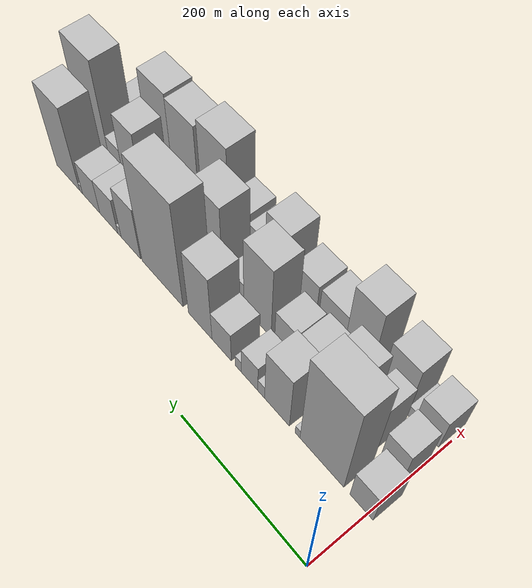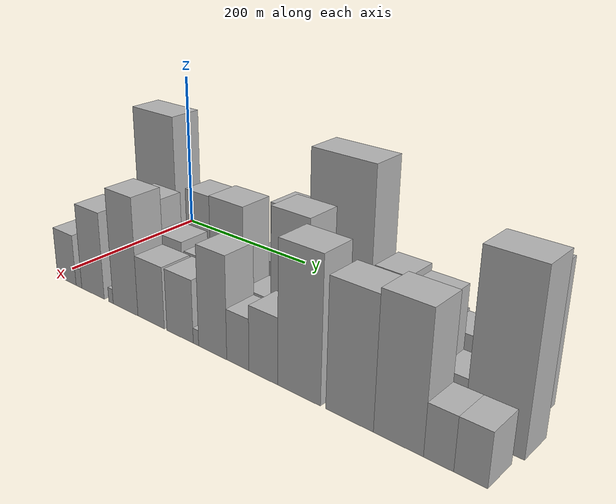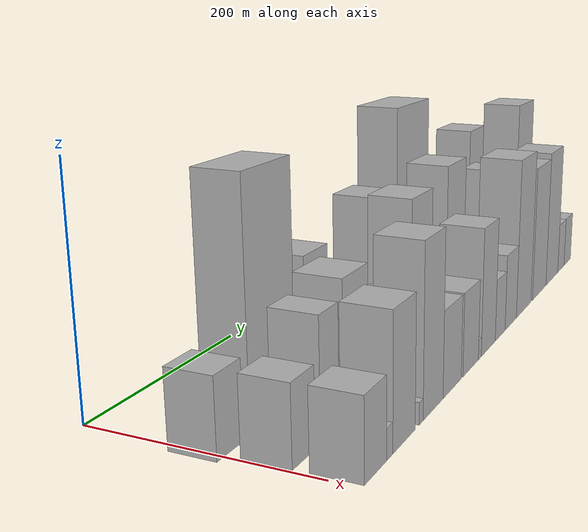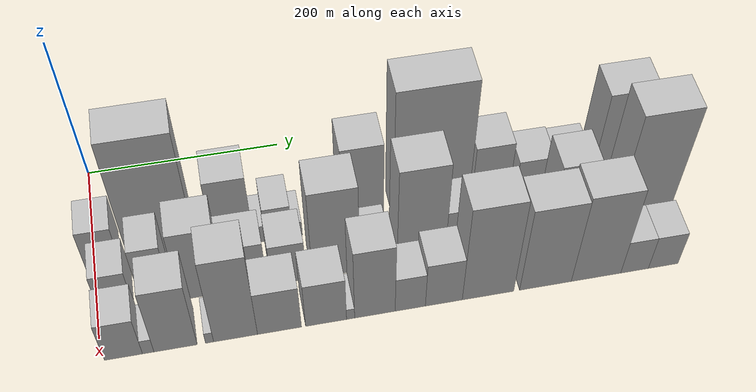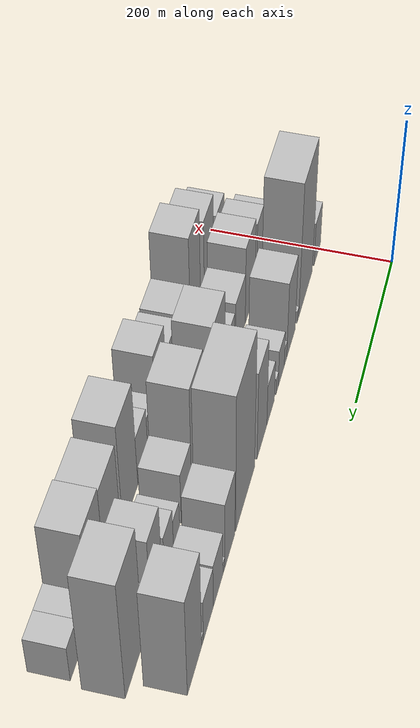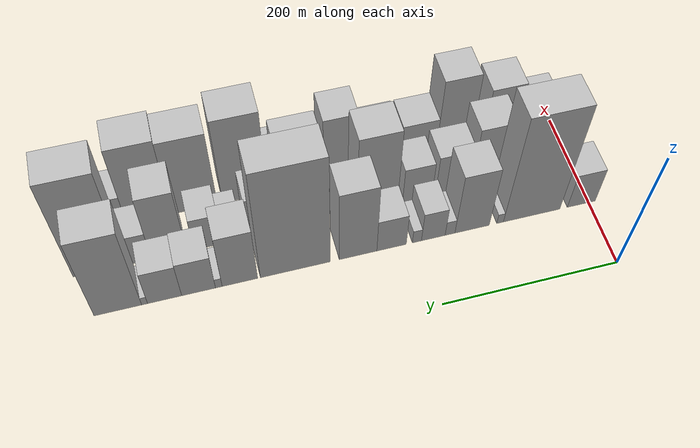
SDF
<sdf version="1.6">
 <world name="default">
  <model name="building_16">
   <static>1</static>
   <pose>100.0000 8.8448 0 0.000000 0.000000 0.000000</pose>
   <link name="link">
    <pose>0 0 31.50 0 0 0</pose>
    <collision name="collision"><geometry><box><size>40.0000 33.9415 63.0000</size></box></geometry></collision>
    <visual name="visual">
     <cast_shadows>0</cast_shadows>
     <geometry><box><size>40.0000 33.9415 63.0000</size></box></geometry>
     <material>
      <script>
       <uri>model://HANNAS_wall/materials/scripts</uri>
       <uri>model://HANNAS_wall/materials/textures</uri>
       <name>vrc/HANNAS_wall</name>
      </script>
     </material>
    </visual>
   </link>
  </model>
  <model name="building_17">
   <static>1</static>
   <pose>100.0000 68.5710 0 0.000000 0.000000 0.000000</pose>
   <link name="link">
    <pose>0 0 96.00 0 0 0</pose>
    <collision name="collision"><geometry><box><size>40.0000 67.5108 192.0000</size></box></geometry></collision>
    <visual name="visual">
     <cast_shadows>0</cast_shadows>
     <geometry><box><size>40.0000 67.5108 192.0000</size></box></geometry>
     <material>
      <script>
       <uri>model://HANNAS_wall/materials/scripts</uri>
       <uri>model://HANNAS_wall/materials/textures</uri>
       <name>vrc/HANNAS_wall</name>
      </script>
     </material>
    </visual>
   </link>
  </model>
  <model name="building_18">
   <static>1</static>
   <pose>100.0000 106.2454 0 0.000000 0.000000 0.000000</pose>
   <link name="link">
    <pose>0 0 9.00 0 0 0</pose>
    <collision name="collision"><geometry><box><size>40.0000 7.8379 18.0000</size></box></geometry></collision>
    <visual name="visual">
     <cast_shadows>0</cast_shadows>
     <geometry><box><size>40.0000 7.8379 18.0000</size></box></geometry>
     <material>
      <script>
       <uri>model://HANNAS_wall/materials/scripts</uri>
       <uri>model://HANNAS_wall/materials/textures</uri>
       <name>vrc/HANNAS_wall</name>
      </script>
     </material>
    </visual>
   </link>
  </model>
  <model name="building_19">
   <static>1</static>
   <pose>100.0000 139.3335 0 0.000000 0.000000 0.000000</pose>
   <link name="link">
    <pose>0 0 55.50 0 0 0</pose>
    <collision name="collision"><geometry><box><size>40.0000 40.3383 111.0000</size></box></geometry></collision>
    <visual name="visual">
     <cast_shadows>0</cast_shadows>
     <geometry><box><size>40.0000 40.3383 111.0000</size></box></geometry>
     <material>
      <script>
       <uri>model://HANNAS_wall/materials/scripts</uri>
       <uri>model://HANNAS_wall/materials/textures</uri>
       <name>vrc/HANNAS_wall</name>
      </script>
     </material>
    </visual>
   </link>
  </model>
  <model name="building_20">
   <static>1</static>
   <pose>100.0000 165.2207 0 0.000000 0.000000 0.000000</pose>
   <link name="link">
    <pose>0 0 13.50 0 0 0</pose>
    <collision name="collision"><geometry><box><size>40.0000 11.4361 27.0000</size></box></geometry></collision>
    <visual name="visual">
     <cast_shadows>0</cast_shadows>
     <geometry><box><size>40.0000 11.4361 27.0000</size></box></geometry>
     <material>
      <script>
       <uri>model://HANNAS_wall/materials/scripts</uri>
       <uri>model://HANNAS_wall/materials/textures</uri>
       <name>vrc/HANNAS_wall</name>
      </script>
     </material>
    </visual>
   </link>
  </model>
  <model name="building_21">
   <static>1</static>
   <pose>100.0000 184.7017 0 0.000000 0.000000 0.000000</pose>
   <link name="link">
    <pose>0 0 27.00 0 0 0</pose>
    <collision name="collision"><geometry><box><size>40.0000 27.5259 54.0000</size></box></geometry></collision>
    <visual name="visual">
     <cast_shadows>0</cast_shadows>
     <geometry><box><size>40.0000 27.5259 54.0000</size></box></geometry>
     <material>
      <script>
       <uri>model://HANNAS_wall/materials/scripts</uri>
       <uri>model://HANNAS_wall/materials/textures</uri>
       <name>vrc/HANNAS_wall</name>
      </script>
     </material>
    </visual>
   </link>
  </model>
  <model name="building_22">
   <static>1</static>
   <pose>100.0000 203.6912 0 0.000000 0.000000 0.000000</pose>
   <link name="link">
    <pose>0 0 12.00 0 0 0</pose>
    <collision name="collision"><geometry><box><size>40.0000 10.4531 24.0000</size></box></geometry></collision>
    <visual name="visual">
     <cast_shadows>0</cast_shadows>
     <geometry><box><size>40.0000 10.4531 24.0000</size></box></geometry>
     <material>
      <script>
       <uri>model://HANNAS_wall/materials/scripts</uri>
       <uri>model://HANNAS_wall/materials/textures</uri>
       <name>vrc/HANNAS_wall</name>
      </script>
     </material>
    </visual>
   </link>
  </model>
  <model name="building_23">
   <static>1</static>
   <pose>100.0000 232.8153 0 0.000000 0.000000 0.000000</pose>
   <link name="link">
    <pose>0 0 30.00 0 0 0</pose>
    <collision name="collision"><geometry><box><size>40.0000 33.7951 60.0000</size></box></geometry></collision>
    <visual name="visual">
     <cast_shadows>0</cast_shadows>
     <geometry><box><size>40.0000 33.7951 60.0000</size></box></geometry>
     <material>
      <script>
       <uri>model://HANNAS_wall/materials/scripts</uri>
       <uri>model://HANNAS_wall/materials/textures</uri>
       <name>vrc/HANNAS_wall</name>
      </script>
     </material>
    </visual>
   </link>
  </model>
  <model name="building_24">
   <static>1</static>
   <pose>100.0000 271.0639 0 0.000000 0.000000 0.000000</pose>
   <link name="link">
    <pose>0 0 64.50 0 0 0</pose>
    <collision name="collision"><geometry><box><size>40.0000 42.7021 129.0000</size></box></geometry></collision>
    <visual name="visual">
     <cast_shadows>0</cast_shadows>
     <geometry><box><size>40.0000 42.7021 129.0000</size></box></geometry>
     <material>
      <script>
       <uri>model://HANNAS_wall/materials/scripts</uri>
       <uri>model://HANNAS_wall/materials/textures</uri>
       <name>vrc/HANNAS_wall</name>
      </script>
     </material>
    </visual>
   </link>
  </model>
  <model name="building_25">
   <static>1</static>
   <pose>100.0000 341.4721 0 0.000000 0.000000 0.000000</pose>
   <link name="link">
    <pose>0 0 100.50 0 0 0</pose>
    <collision name="collision"><geometry><box><size>40.0000 78.1143 201.0000</size></box></geometry></collision>
    <visual name="visual">
     <cast_shadows>0</cast_shadows>
     <geometry><box><size>40.0000 78.1143 201.0000</size></box></geometry>
     <material>
      <script>
       <uri>model://HANNAS_wall/materials/scripts</uri>
       <uri>model://HANNAS_wall/materials/textures</uri>
       <name>vrc/HANNAS_wall</name>
      </script>
     </material>
    </visual>
   </link>
  </model>
  <model name="building_26">
   <static>1</static>
   <pose>100.0000 403.0197 0 0.000000 0.000000 0.000000</pose>
   <link name="link">
    <pose>0 0 49.50 0 0 0</pose>
    <collision name="collision"><geometry><box><size>40.0000 38.9808 99.0000</size></box></geometry></collision>
    <visual name="visual">
     <cast_shadows>0</cast_shadows>
     <geometry><box><size>40.0000 38.9808 99.0000</size></box></geometry>
     <material>
      <script>
       <uri>model://HANNAS_wall/materials/scripts</uri>
       <uri>model://HANNAS_wall/materials/textures</uri>
       <name>vrc/HANNAS_wall</name>
      </script>
     </material>
    </visual>
   </link>
  </model>
  <model name="building_27">
   <static>1</static>
   <pose>100.0000 426.1616 0 0.000000 0.000000 0.000000</pose>
   <link name="link">
    <pose>0 0 9.00 0 0 0</pose>
    <collision name="collision"><geometry><box><size>40.0000 7.3030 18.0000</size></box></geometry></collision>
    <visual name="visual">
     <cast_shadows>0</cast_shadows>
     <geometry><box><size>40.0000 7.3030 18.0000</size></box></geometry>
     <material>
      <script>
       <uri>model://HANNAS_wall/materials/scripts</uri>
       <uri>model://HANNAS_wall/materials/textures</uri>
       <name>vrc/HANNAS_wall</name>
      </script>
     </material>
    </visual>
   </link>
  </model>
  <model name="building_28">
   <static>1</static>
   <pose>100.0000 448.1309 0 0.000000 0.000000 0.000000</pose>
   <link name="link">
    <pose>0 0 33.00 0 0 0</pose>
    <collision name="collision"><geometry><box><size>40.0000 36.6356 66.0000</size></box></geometry></collision>
    <visual name="visual">
     <cast_shadows>0</cast_shadows>
     <geometry><box><size>40.0000 36.6356 66.0000</size></box></geometry>
     <material>
      <script>
       <uri>model://HANNAS_wall/materials/scripts</uri>
       <uri>model://HANNAS_wall/materials/textures</uri>
       <name>vrc/HANNAS_wall</name>
      </script>
     </material>
    </visual>
   </link>
  </model>
  <model name="building_29">
   <static>1</static>
   <pose>100.0000 484.8360 0 0.000000 0.000000 0.000000</pose>
   <link name="link">
    <pose>0 0 31.50 0 0 0</pose>
    <collision name="collision"><geometry><box><size>40.0000 36.7747 63.0000</size></box></geometry></collision>
    <visual name="visual">
     <cast_shadows>0</cast_shadows>
     <geometry><box><size>40.0000 36.7747 63.0000</size></box></geometry>
     <material>
      <script>
       <uri>model://HANNAS_wall/materials/scripts</uri>
       <uri>model://HANNAS_wall/materials/textures</uri>
       <name>vrc/HANNAS_wall</name>
      </script>
     </material>
    </visual>
   </link>
  </model>
  <model name="building_30">
   <static>1</static>
   <pose>100.0000 506.3536 0 0.000000 0.000000 0.000000</pose>
   <link name="link">
    <pose>0 0 7.50 0 0 0</pose>
    <collision name="collision"><geometry><box><size>40.0000 6.2604 15.0000</size></box></geometry></collision>
    <visual name="visual">
     <cast_shadows>0</cast_shadows>
     <geometry><box><size>40.0000 6.2604 15.0000</size></box></geometry>
     <material>
      <script>
       <uri>model://HANNAS_wall/materials/scripts</uri>
       <uri>model://HANNAS_wall/materials/textures</uri>
       <name>vrc/HANNAS_wall</name>
      </script>
     </material>
    </visual>
   </link>
  </model>
  <model name="building_31">
   <static>1</static>
   <pose>100.0000 534.7496 0 0.000000 0.000000 0.000000</pose>
   <link name="link">
    <pose>0 0 75.00 0 0 0</pose>
    <collision name="collision"><geometry><box><size>40.0000 50.5316 150.0000</size></box></geometry></collision>
    <visual name="visual">
     <cast_shadows>0</cast_shadows>
     <geometry><box><size>40.0000 50.5316 150.0000</size></box></geometry>
     <material>
      <script>
       <uri>model://HANNAS_wall/materials/scripts</uri>
       <uri>model://HANNAS_wall/materials/textures</uri>
       <name>vrc/HANNAS_wall</name>
      </script>
     </material>
    </visual>
   </link>
  </model>
  <model name="building_49">
   <static>1</static>
   <pose>152.0000 18.9590 0 0.000000 0.000000 0.000000</pose>
   <link name="link">
    <pose>0 0 31.50 0 0 0</pose>
    <collision name="collision"><geometry><box><size>40.0000 33.0710 63.0000</size></box></geometry></collision>
    <visual name="visual">
     <cast_shadows>0</cast_shadows>
     <geometry><box><size>40.0000 33.0710 63.0000</size></box></geometry>
     <material>
      <script>
       <uri>model://HANNAS_wall/materials/scripts</uri>
       <uri>model://HANNAS_wall/materials/textures</uri>
       <name>vrc/HANNAS_wall</name>
      </script>
     </material>
    </visual>
   </link>
  </model>
  <model name="building_50">
   <static>1</static>
   <pose>152.0000 58.2756 0 0.000000 0.000000 0.000000</pose>
   <link name="link">
    <pose>0 0 48.00 0 0 0</pose>
    <collision name="collision"><geometry><box><size>40.0000 29.5621 96.0000</size></box></geometry></collision>
    <visual name="visual">
     <cast_shadows>0</cast_shadows>
     <geometry><box><size>40.0000 29.5621 96.0000</size></box></geometry>
     <material>
      <script>
       <uri>model://HANNAS_wall/materials/scripts</uri>
       <uri>model://HANNAS_wall/materials/textures</uri>
       <name>vrc/HANNAS_wall</name>
      </script>
     </material>
    </visual>
   </link>
  </model>
  <model name="building_51">
   <static>1</static>
   <pose>152.0000 101.7993 0 0.000000 0.000000 0.000000</pose>
   <link name="link">
    <pose>0 0 55.50 0 0 0</pose>
    <collision name="collision"><geometry><box><size>40.0000 43.4853 111.0000</size></box></geometry></collision>
    <visual name="visual">
     <cast_shadows>0</cast_shadows>
     <geometry><box><size>40.0000 43.4853 111.0000</size></box></geometry>
     <material>
      <script>
       <uri>model://HANNAS_wall/materials/scripts</uri>
       <uri>model://HANNAS_wall/materials/textures</uri>
       <name>vrc/HANNAS_wall</name>
      </script>
     </material>
    </visual>
   </link>
  </model>
  <model name="building_52">
   <static>1</static>
   <pose>152.0000 144.7574 0 0.000000 0.000000 0.000000</pose>
   <link name="link">
    <pose>0 0 37.50 0 0 0</pose>
    <collision name="collision"><geometry><box><size>40.0000 42.4308 75.0000</size></box></geometry></collision>
    <visual name="visual">
     <cast_shadows>0</cast_shadows>
     <geometry><box><size>40.0000 42.4308 75.0000</size></box></geometry>
     <material>
      <script>
       <uri>model://HANNAS_wall/materials/scripts</uri>
       <uri>model://HANNAS_wall/materials/textures</uri>
       <name>vrc/HANNAS_wall</name>
      </script>
     </material>
    </visual>
   </link>
  </model>
  <model name="building_53">
   <static>1</static>
   <pose>152.0000 187.3837 0 0.000000 0.000000 0.000000</pose>
   <link name="link">
    <pose>0 0 33.00 0 0 0</pose>
    <collision name="collision"><geometry><box><size>40.0000 34.8218 66.0000</size></box></geometry></collision>
    <visual name="visual">
     <cast_shadows>0</cast_shadows>
     <geometry><box><size>40.0000 34.8218 66.0000</size></box></geometry>
     <material>
      <script>
       <uri>model://HANNAS_wall/materials/scripts</uri>
       <uri>model://HANNAS_wall/materials/textures</uri>
       <name>vrc/HANNAS_wall</name>
      </script>
     </material>
    </visual>
   </link>
  </model>
  <model name="building_54">
   <static>1</static>
   <pose>152.0000 234.4844 0 0.000000 0.000000 0.000000</pose>
   <link name="link">
    <pose>0 0 70.50 0 0 0</pose>
    <collision name="collision"><geometry><box><size>40.0000 47.3798 141.0000</size></box></geometry></collision>
    <visual name="visual">
     <cast_shadows>0</cast_shadows>
     <geometry><box><size>40.0000 47.3798 141.0000</size></box></geometry>
     <material>
      <script>
       <uri>model://HANNAS_wall/materials/scripts</uri>
       <uri>model://HANNAS_wall/materials/textures</uri>
       <name>vrc/HANNAS_wall</name>
      </script>
     </material>
    </visual>
   </link>
  </model>
  <model name="building_55">
   <static>1</static>
   <pose>152.0000 272.9734 0 0.000000 0.000000 0.000000</pose>
   <link name="link">
    <pose>0 0 25.50 0 0 0</pose>
    <collision name="collision"><geometry><box><size>40.0000 29.5981 51.0000</size></box></geometry></collision>
    <visual name="visual">
     <cast_shadows>0</cast_shadows>
     <geometry><box><size>40.0000 29.5981 51.0000</size></box></geometry>
     <material>
      <script>
       <uri>model://HANNAS_wall/materials/scripts</uri>
       <uri>model://HANNAS_wall/materials/textures</uri>
       <name>vrc/HANNAS_wall</name>
      </script>
     </material>
    </visual>
   </link>
  </model>
  <model name="building_56">
   <static>1</static>
   <pose>152.0000 320.2598 0 0.000000 0.000000 0.000000</pose>
   <link name="link">
    <pose>0 0 76.50 0 0 0</pose>
    <collision name="collision"><geometry><box><size>40.0000 48.9747 153.0000</size></box></geometry></collision>
    <visual name="visual">
     <cast_shadows>0</cast_shadows>
     <geometry><box><size>40.0000 48.9747 153.0000</size></box></geometry>
     <material>
      <script>
       <uri>model://HANNAS_wall/materials/scripts</uri>
       <uri>model://HANNAS_wall/materials/textures</uri>
       <name>vrc/HANNAS_wall</name>
      </script>
     </material>
    </visual>
   </link>
  </model>
  <model name="building_57">
   <static>1</static>
   <pose>152.0000 364.0805 0 0.000000 0.000000 0.000000</pose>
   <link name="link">
    <pose>0 0 37.50 0 0 0</pose>
    <collision name="collision"><geometry><box><size>40.0000 38.6667 75.0000</size></box></geometry></collision>
    <visual name="visual">
     <cast_shadows>0</cast_shadows>
     <geometry><box><size>40.0000 38.6667 75.0000</size></box></geometry>
     <material>
      <script>
       <uri>model://HANNAS_wall/materials/scripts</uri>
       <uri>model://HANNAS_wall/materials/textures</uri>
       <name>vrc/HANNAS_wall</name>
      </script>
     </material>
    </visual>
   </link>
  </model>
  <model name="building_58">
   <static>1</static>
   <pose>152.0000 400.8015 0 0.000000 0.000000 0.000000</pose>
   <link name="link">
    <pose>0 0 21.00 0 0 0</pose>
    <collision name="collision"><geometry><box><size>40.0000 22.7754 42.0000</size></box></geometry></collision>
    <visual name="visual">
     <cast_shadows>0</cast_shadows>
     <geometry><box><size>40.0000 22.7754 42.0000</size></box></geometry>
     <material>
      <script>
       <uri>model://HANNAS_wall/materials/scripts</uri>
       <uri>model://HANNAS_wall/materials/textures</uri>
       <name>vrc/HANNAS_wall</name>
      </script>
     </material>
    </visual>
   </link>
  </model>
  <model name="building_59">
   <static>1</static>
   <pose>152.0000 428.1419 0 0.000000 0.000000 0.000000</pose>
   <link name="link">
    <pose>0 0 30.00 0 0 0</pose>
    <collision name="collision"><geometry><box><size>40.0000 31.9054 60.0000</size></box></geometry></collision>
    <visual name="visual">
     <cast_shadows>0</cast_shadows>
     <geometry><box><size>40.0000 31.9054 60.0000</size></box></geometry>
     <material>
      <script>
       <uri>model://HANNAS_wall/materials/scripts</uri>
       <uri>model://HANNAS_wall/materials/textures</uri>
       <name>vrc/HANNAS_wall</name>
      </script>
     </material>
    </visual>
   </link>
  </model>
  <model name="building_60">
   <static>1</static>
   <pose>152.0000 471.5386 0 0.000000 0.000000 0.000000</pose>
   <link name="link">
    <pose>0 0 60.00 0 0 0</pose>
    <collision name="collision"><geometry><box><size>40.0000 38.8879 120.0000</size></box></geometry></collision>
    <visual name="visual">
     <cast_shadows>0</cast_shadows>
     <geometry><box><size>40.0000 38.8879 120.0000</size></box></geometry>
     <material>
      <script>
       <uri>model://HANNAS_wall/materials/scripts</uri>
       <uri>model://HANNAS_wall/materials/textures</uri>
       <name>vrc/HANNAS_wall</name>
      </script>
     </material>
    </visual>
   </link>
  </model>
  <model name="building_61">
   <static>1</static>
   <pose>152.0000 504.9550 0 0.000000 0.000000 0.000000</pose>
   <link name="link">
    <pose>0 0 27.00 0 0 0</pose>
    <collision name="collision"><geometry><box><size>40.0000 27.9450 54.0000</size></box></geometry></collision>
    <visual name="visual">
     <cast_shadows>0</cast_shadows>
     <geometry><box><size>40.0000 27.9450 54.0000</size></box></geometry>
     <material>
      <script>
       <uri>model://HANNAS_wall/materials/scripts</uri>
       <uri>model://HANNAS_wall/materials/textures</uri>
       <name>vrc/HANNAS_wall</name>
      </script>
     </material>
    </visual>
   </link>
  </model>
  <model name="building_62">
   <static>1</static>
   <pose>152.0000 547.6055 0 0.000000 0.000000 0.000000</pose>
   <link name="link">
    <pose>0 0 90.00 0 0 0</pose>
    <collision name="collision"><geometry><box><size>40.0000 57.3561 180.0000</size></box></geometry></collision>
    <visual name="visual">
     <cast_shadows>0</cast_shadows>
     <geometry><box><size>40.0000 57.3561 180.0000</size></box></geometry>
     <material>
      <script>
       <uri>model://HANNAS_wall/materials/scripts</uri>
       <uri>model://HANNAS_wall/materials/textures</uri>
       <name>vrc/HANNAS_wall</name>
      </script>
     </material>
    </visual>
   </link>
  </model>
  <model name="building_76">
   <static>1</static>
   <pose>204.0000 21.7994 0 0.000000 0.000000 0.000000</pose>
   <link name="link">
    <pose>0 0 31.50 0 0 0</pose>
    <collision name="collision"><geometry><box><size>40.0000 35.6930 63.0000</size></box></geometry></collision>
    <visual name="visual">
     <cast_shadows>0</cast_shadows>
     <geometry><box><size>40.0000 35.6930 63.0000</size></box></geometry>
     <material>
      <script>
       <uri>model://HANNAS_wall/materials/scripts</uri>
       <uri>model://HANNAS_wall/materials/textures</uri>
       <name>vrc/HANNAS_wall</name>
      </script>
     </material>
    </visual>
   </link>
  </model>
  <model name="building_77">
   <static>1</static>
   <pose>204.0000 45.0731 0 0.000000 0.000000 0.000000</pose>
   <link name="link">
    <pose>0 0 12.00 0 0 0</pose>
    <collision name="collision"><geometry><box><size>40.0000 10.8545 24.0000</size></box></geometry></collision>
    <visual name="visual">
     <cast_shadows>0</cast_shadows>
     <geometry><box><size>40.0000 10.8545 24.0000</size></box></geometry>
     <material>
      <script>
       <uri>model://HANNAS_wall/materials/scripts</uri>
       <uri>model://HANNAS_wall/materials/textures</uri>
       <name>vrc/HANNAS_wall</name>
      </script>
     </material>
    </visual>
   </link>
  </model>
  <model name="building_78">
   <static>1</static>
   <pose>204.0000 70.9654 0 0.000000 0.000000 0.000000</pose>
   <link name="link">
    <pose>0 0 52.50 0 0 0</pose>
    <collision name="collision"><geometry><box><size>40.0000 40.9301 105.0000</size></box></geometry></collision>
    <visual name="visual">
     <cast_shadows>0</cast_shadows>
     <geometry><box><size>40.0000 40.9301 105.0000</size></box></geometry>
     <material>
      <script>
       <uri>model://HANNAS_wall/materials/scripts</uri>
       <uri>model://HANNAS_wall/materials/textures</uri>
       <name>vrc/HANNAS_wall</name>
      </script>
     </material>
    </visual>
   </link>
  </model>
  <model name="building_79">
   <static>1</static>
   <pose>204.0000 103.2694 0 0.000000 0.000000 0.000000</pose>
   <link name="link">
    <pose>0 0 9.00 0 0 0</pose>
    <collision name="collision"><geometry><box><size>40.0000 7.6777 18.0000</size></box></geometry></collision>
    <visual name="visual">
     <cast_shadows>0</cast_shadows>
     <geometry><box><size>40.0000 7.6777 18.0000</size></box></geometry>
     <material>
      <script>
       <uri>model://HANNAS_wall/materials/scripts</uri>
       <uri>model://HANNAS_wall/materials/textures</uri>
       <name>vrc/HANNAS_wall</name>
      </script>
     </material>
    </visual>
   </link>
  </model>
  <model name="building_80">
   <static>1</static>
   <pose>204.0000 128.1693 0 0.000000 0.000000 0.000000</pose>
   <link name="link">
    <pose>0 0 69.00 0 0 0</pose>
    <collision name="collision"><geometry><box><size>40.0000 42.1222 138.0000</size></box></geometry></collision>
    <visual name="visual">
     <cast_shadows>0</cast_shadows>
     <geometry><box><size>40.0000 42.1222 138.0000</size></box></geometry>
     <material>
      <script>
       <uri>model://HANNAS_wall/materials/scripts</uri>
       <uri>model://HANNAS_wall/materials/textures</uri>
       <name>vrc/HANNAS_wall</name>
      </script>
     </material>
    </visual>
   </link>
  </model>
  <model name="building_81">
   <static>1</static>
   <pose>204.0000 170.4618 0 0.000000 0.000000 0.000000</pose>
   <link name="link">
    <pose>0 0 36.00 0 0 0</pose>
    <collision name="collision"><geometry><box><size>40.0000 42.4628 72.0000</size></box></geometry></collision>
    <visual name="visual">
     <cast_shadows>0</cast_shadows>
     <geometry><box><size>40.0000 42.4628 72.0000</size></box></geometry>
     <material>
      <script>
       <uri>model://HANNAS_wall/materials/scripts</uri>
       <uri>model://HANNAS_wall/materials/textures</uri>
       <name>vrc/HANNAS_wall</name>
      </script>
     </material>
    </visual>
   </link>
  </model>
  <model name="building_82">
   <static>1</static>
   <pose>204.0000 215.6408 0 0.000000 0.000000 0.000000</pose>
   <link name="link">
    <pose>0 0 36.00 0 0 0</pose>
    <collision name="collision"><geometry><box><size>40.0000 39.8951 72.0000</size></box></geometry></collision>
    <visual name="visual">
     <cast_shadows>0</cast_shadows>
     <geometry><box><size>40.0000 39.8951 72.0000</size></box></geometry>
     <material>
      <script>
       <uri>model://HANNAS_wall/materials/scripts</uri>
       <uri>model://HANNAS_wall/materials/textures</uri>
       <name>vrc/HANNAS_wall</name>
      </script>
     </material>
    </visual>
   </link>
  </model>
  <model name="building_83">
   <static>1</static>
   <pose>204.0000 239.5411 0 0.000000 0.000000 0.000000</pose>
   <link name="link">
    <pose>0 0 9.00 0 0 0</pose>
    <collision name="collision"><geometry><box><size>40.0000 7.9054 18.0000</size></box></geometry></collision>
    <visual name="visual">
     <cast_shadows>0</cast_shadows>
     <geometry><box><size>40.0000 7.9054 18.0000</size></box></geometry>
     <material>
      <script>
       <uri>model://HANNAS_wall/materials/scripts</uri>
       <uri>model://HANNAS_wall/materials/textures</uri>
       <name>vrc/HANNAS_wall</name>
      </script>
     </material>
    </visual>
   </link>
  </model>
  <model name="building_84">
   <static>1</static>
   <pose>204.0000 263.4127 0 0.000000 0.000000 0.000000</pose>
   <link name="link">
    <pose>0 0 57.00 0 0 0</pose>
    <collision name="collision"><geometry><box><size>40.0000 39.8379 114.0000</size></box></geometry></collision>
    <visual name="visual">
     <cast_shadows>0</cast_shadows>
     <geometry><box><size>40.0000 39.8379 114.0000</size></box></geometry>
     <material>
      <script>
       <uri>model://HANNAS_wall/materials/scripts</uri>
       <uri>model://HANNAS_wall/materials/textures</uri>
       <name>vrc/HANNAS_wall</name>
      </script>
     </material>
    </visual>
   </link>
  </model>
  <model name="building_85">
   <static>1</static>
   <pose>204.0000 298.3271 0 0.000000 0.000000 0.000000</pose>
   <link name="link">
    <pose>0 0 28.50 0 0 0</pose>
    <collision name="collision"><geometry><box><size>40.0000 29.9909 57.0000</size></box></geometry></collision>
    <visual name="visual">
     <cast_shadows>0</cast_shadows>
     <geometry><box><size>40.0000 29.9909 57.0000</size></box></geometry>
     <material>
      <script>
       <uri>model://HANNAS_wall/materials/scripts</uri>
       <uri>model://HANNAS_wall/materials/textures</uri>
       <name>vrc/HANNAS_wall</name>
      </script>
     </material>
    </visual>
   </link>
  </model>
  <model name="building_86">
   <static>1</static>
   <pose>204.0000 331.7270 0 0.000000 0.000000 0.000000</pose>
   <link name="link">
    <pose>0 0 36.00 0 0 0</pose>
    <collision name="collision"><geometry><box><size>40.0000 36.8088 72.0000</size></box></geometry></collision>
    <visual name="visual">
     <cast_shadows>0</cast_shadows>
     <geometry><box><size>40.0000 36.8088 72.0000</size></box></geometry>
     <material>
      <script>
       <uri>model://HANNAS_wall/materials/scripts</uri>
       <uri>model://HANNAS_wall/materials/textures</uri>
       <name>vrc/HANNAS_wall</name>
      </script>
     </material>
    </visual>
   </link>
  </model>
  <model name="building_87">
   <static>1</static>
   <pose>204.0000 376.0079 0 0.000000 0.000000 0.000000</pose>
   <link name="link">
    <pose>0 0 76.50 0 0 0</pose>
    <collision name="collision"><geometry><box><size>40.0000 51.7530 153.0000</size></box></geometry></collision>
    <visual name="visual">
     <cast_shadows>0</cast_shadows>
     <geometry><box><size>40.0000 51.7530 153.0000</size></box></geometry>
     <material>
      <script>
       <uri>model://HANNAS_wall/materials/scripts</uri>
       <uri>model://HANNAS_wall/materials/textures</uri>
       <name>vrc/HANNAS_wall</name>
      </script>
     </material>
    </visual>
   </link>
  </model>
  <model name="building_88">
   <static>1</static>
   <pose>204.0000 434.1667 0 0.000000 0.000000 0.000000</pose>
   <link name="link">
    <pose>0 0 67.50 0 0 0</pose>
    <collision name="collision"><geometry><box><size>40.0000 52.5647 135.0000</size></box></geometry></collision>
    <visual name="visual">
     <cast_shadows>0</cast_shadows>
     <geometry><box><size>40.0000 52.5647 135.0000</size></box></geometry>
     <material>
      <script>
       <uri>model://HANNAS_wall/materials/scripts</uri>
       <uri>model://HANNAS_wall/materials/textures</uri>
       <name>vrc/HANNAS_wall</name>
      </script>
     </material>
    </visual>
   </link>
  </model>
  <model name="building_89">
   <static>1</static>
   <pose>204.0000 485.8321 0 0.000000 0.000000 0.000000</pose>
   <link name="link">
    <pose>0 0 70.50 0 0 0</pose>
    <collision name="collision"><geometry><box><size>40.0000 50.7661 141.0000</size></box></geometry></collision>
    <visual name="visual">
     <cast_shadows>0</cast_shadows>
     <geometry><box><size>40.0000 50.7661 141.0000</size></box></geometry>
     <material>
      <script>
       <uri>model://HANNAS_wall/materials/scripts</uri>
       <uri>model://HANNAS_wall/materials/textures</uri>
       <name>vrc/HANNAS_wall</name>
      </script>
     </material>
    </visual>
   </link>
  </model>
  <model name="building_90">
   <static>1</static>
   <pose>204.0000 525.5617 0 0.000000 0.000000 0.000000</pose>
   <link name="link">
    <pose>0 0 27.00 0 0 0</pose>
    <collision name="collision"><geometry><box><size>40.0000 28.6931 54.0000</size></box></geometry></collision>
    <visual name="visual">
     <cast_shadows>0</cast_shadows>
     <geometry><box><size>40.0000 28.6931 54.0000</size></box></geometry>
     <material>
      <script>
       <uri>model://HANNAS_wall/materials/scripts</uri>
       <uri>model://HANNAS_wall/materials/textures</uri>
       <name>vrc/HANNAS_wall</name>
      </script>
     </material>
    </visual>
   </link>
  </model>
  <model name="building_91">
   <static>1</static>
   <pose>204.0000 555.3015 0 0.000000 0.000000 0.000000</pose>
   <link name="link">
    <pose>0 0 27.00 0 0 0</pose>
    <collision name="collision"><geometry><box><size>40.0000 30.7864 54.0000</size></box></geometry></collision>
    <visual name="visual">
     <cast_shadows>0</cast_shadows>
     <geometry><box><size>40.0000 30.7864 54.0000</size></box></geometry>
     <material>
      <script>
       <uri>model://HANNAS_wall/materials/scripts</uri>
       <uri>model://HANNAS_wall/materials/textures</uri>
       <name>vrc/HANNAS_wall</name>
      </script>
     </material>
    </visual>
   </link>
  </model>
 </world>
</sdf>
